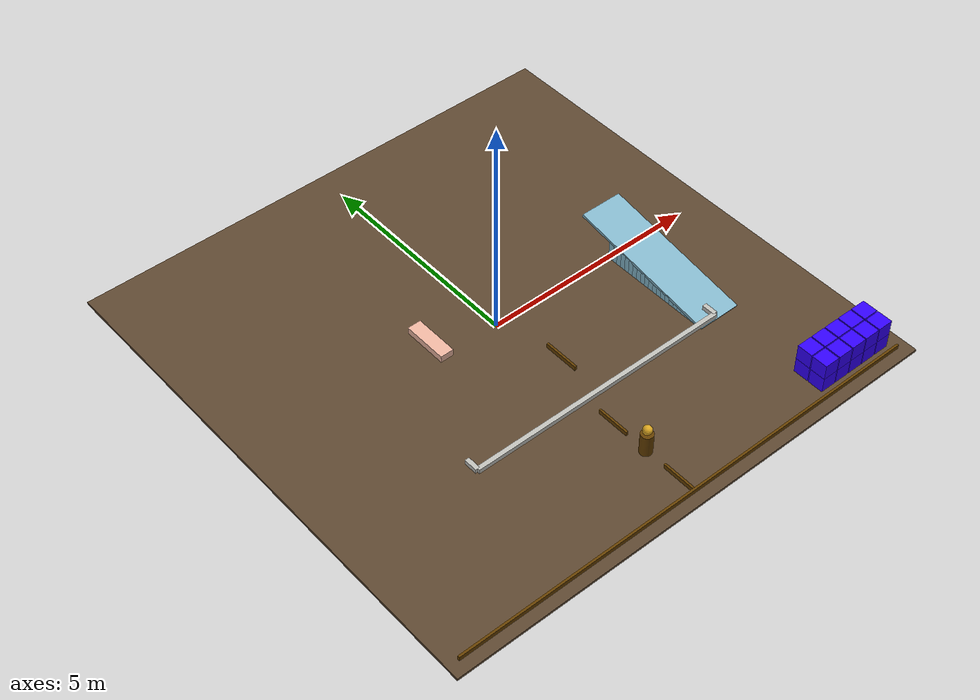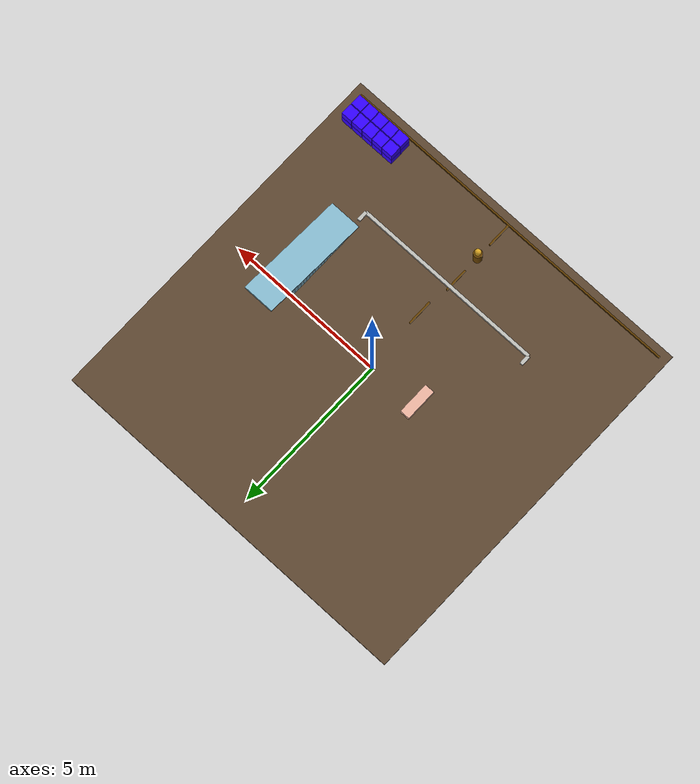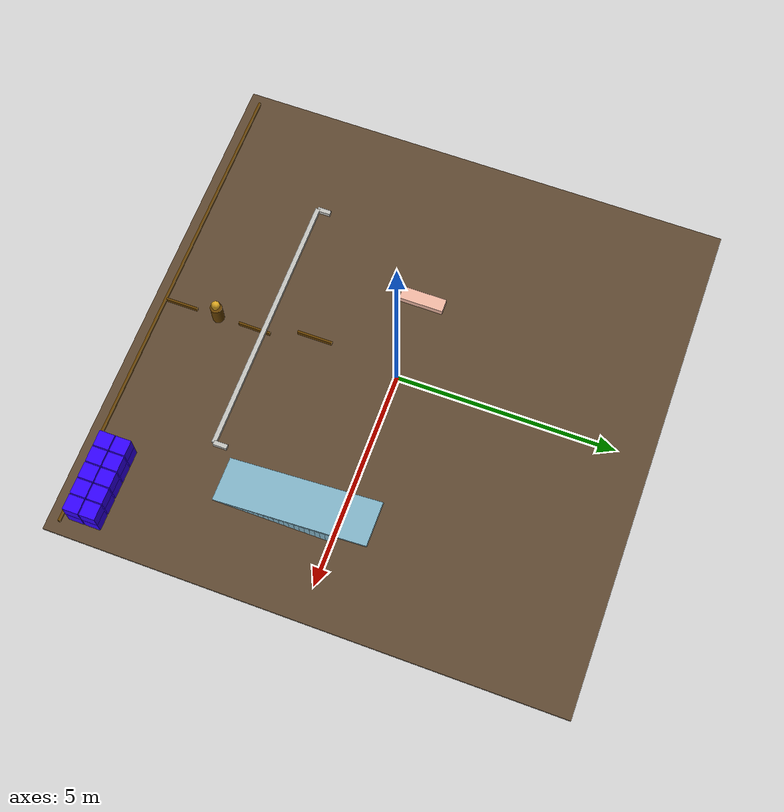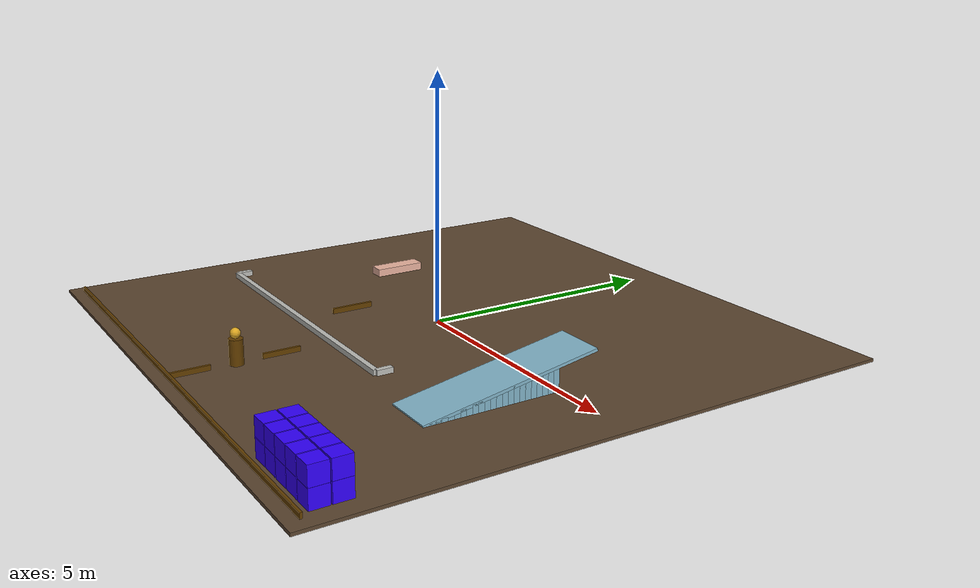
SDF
<sdf version="1.6">
 <world name="robocon2027_arena">
  <model name="field_base">
   <static>true</static>
   <pose>0.0000 0.0000 -0.0300 0.000000 0.000000 0.000000</pose>
   <link name="link">
    <collision name="col"><geometry><box><size>11.6 11.6 0.06</size></box></geometry></collision>
    <visual name="vis">
     <geometry><box><size>11.6 11.6 0.06</size></box></geometry>
     <material>
      <ambient>0.361 0.275 0.188 1.00</ambient>
      <diffuse>0.361 0.275 0.188 1.00</diffuse>
      <specular>0.04 0.04 0.04 1</specular>
      <emissive>0 0 0 1</emissive>
     </material>
    </visual>
   </link>
  </model>
  <model name="mustika_pillar">
   <static>true</static>
   <pose>0.0000 -4.2500 0.2500 0 0 0</pose>
   <link name="link">
    <collision name="col">
     <geometry><cylinder><radius>0.135</radius><length>0.5</length></cylinder></geometry>
    </collision>
    <visual name="vis">
     <geometry><cylinder><radius>0.135</radius><length>0.5</length></cylinder></geometry>
     <material>
      <ambient>0.392 0.243 0.000 1.00</ambient>
      <diffuse>0.392 0.243 0.000 1.00</diffuse>
      <specular>0.04 0.04 0.04 1</specular>
      <emissive>0 0 0 1</emissive>
     </material>
    </visual>
   </link>
  </model>
  <model name="mustika_ball">
   <static>true</static>
   <pose>0.0000 -4.2500 0.6000 0 0 0</pose>
   <link name="link">
    <inertial>
     <mass>0.27</mass>
     <inertia><ixx>0.00108</ixx><iyy>0.00108</iyy><izz>0.00108</izz></inertia>
    </inertial>
    <collision name="col"><geometry><sphere><radius>0.1</radius></sphere></geometry></collision>
    <visual name="vis">
     <geometry><sphere><radius>0.1</radius></sphere></geometry>
     <material>
      <ambient>0.855 0.647 0.125 1.00</ambient>
      <diffuse>0.855 0.647 0.125 1.00</diffuse>
      <specular>0.04 0.04 0.04 1</specular>
      <emissive>0 0 0 1</emissive>
     </material>
    </visual>
   </link>
  </model>
  <model name="fence_pS">
   <static>true</static>
   <pose>0.0000 -5.5250 0.0500 0.000000 0.000000 0.000000</pose>
   <link name="link">
    <collision name="col"><geometry><box><size>11.1 0.05 0.1</size></box></geometry></collision>
    <visual name="vis">
     <geometry><box><size>11.1 0.05 0.1</size></box></geometry>
     <material>
      <ambient>0.392 0.243 0.000 1.00</ambient>
      <diffuse>0.392 0.243 0.000 1.00</diffuse>
      <specular>0.04 0.04 0.04 1</specular>
      <emissive>0 0 0 1</emissive>
     </material>
    </visual>
   </link>
  </model>
  <model name="gdiv_2">
   <static>true</static>
   <pose>0.0000 -3.3750 0.0500 0.000000 0.000000 0.000000</pose>
   <link name="link">
    <collision name="col"><geometry><box><size>0.05 0.75 0.1</size></box></geometry></collision>
    <visual name="vis">
     <geometry><box><size>0.05 0.75 0.1</size></box></geometry>
     <material>
      <ambient>0.392 0.243 0.000 1.00</ambient>
      <diffuse>0.392 0.243 0.000 1.00</diffuse>
      <specular>0.04 0.04 0.04 1</specular>
      <emissive>0 0 0 1</emissive>
     </material>
    </visual>
   </link>
  </model>
  <model name="gdiv_3">
   <static>true</static>
   <pose>0.0000 -5.1250 0.0500 0.000000 0.000000 0.000000</pose>
   <link name="link">
    <collision name="col"><geometry><box><size>0.05 0.75 0.1</size></box></geometry></collision>
    <visual name="vis">
     <geometry><box><size>0.05 0.75 0.1</size></box></geometry>
     <material>
      <ambient>0.392 0.243 0.000 1.00</ambient>
      <diffuse>0.392 0.243 0.000 1.00</diffuse>
      <specular>0.04 0.04 0.04 1</specular>
      <emissive>0 0 0 1</emissive>
     </material>
    </visual>
   </link>
  </model>
  <model name="ddiv_1">
   <static>true</static>
   <pose>0.0000 -1.9000 0.6500 0.000000 0.000000 0.000000</pose>
   <link name="link">
    <collision name="col"><geometry><box><size>0.05 0.8 0.1</size></box></geometry></collision>
    <visual name="vis">
     <geometry><box><size>0.05 0.8 0.1</size></box></geometry>
     <material>
      <ambient>0.392 0.243 0.000 1.00</ambient>
      <diffuse>0.392 0.243 0.000 1.00</diffuse>
      <specular>0.04 0.04 0.04 1</specular>
      <emissive>0 0 0 1</emissive>
     </material>
    </visual>
   </link>
  </model>
  <model name="st2_red">
   <static>true</static>
   <pose>-1.6500 0.0000 0.6750 0.000000 0.000000 0.000000</pose>
   <link name="link">
    <collision name="col"><geometry><box><size>0.3 1.0 0.15</size></box></geometry></collision>
    <visual name="vis">
     <geometry><box><size>0.3 1.0 0.15</size></box></geometry>
     <material>
      <ambient>0.922 0.706 0.627 1.00</ambient>
      <diffuse>0.922 0.706 0.627 1.00</diffuse>
      <specular>0.04 0.04 0.04 1</specular>
      <emissive>0 0 0 1</emissive>
     </material>
    </visual>
   </link>
  </model>
  <model name="ramp_blue">
   <static>true</static>
   <pose>3.5000 -0.9500 0.3000 0.000000 -0.169778 1.570796</pose>
   <link name="link">
    <collision name="col"><geometry><box><size>3.5500000000000003 1.0 0.06</size></box></geometry></collision>
    <visual name="vis">
     <geometry><box><size>3.5500000000000003 1.0 0.06</size></box></geometry>
     <material>
      <ambient>0.510 0.706 0.784 1.00</ambient>
      <diffuse>0.510 0.706 0.784 1.00</diffuse>
      <specular>0.04 0.04 0.04 1</specular>
      <emissive>0 0 0 1</emissive>
     </material>
    </visual>
   </link>
  </model>
  <model name="rampsup_blue_1">
   <static>true</static>
   <pose>3.5000 -2.5250 0.0150 0.000000 0.000000 0.000000</pose>
   <link name="link">
    <collision name="col"><geometry><box><size>1.0 0.11866666666666698 0.03</size></box></geometry></collision>
    <visual name="vis">
     <geometry><box><size>1.0 0.11866666666666698 0.03</size></box></geometry>
     <material>
      <ambient>0.510 0.706 0.784 1.00</ambient>
      <diffuse>0.510 0.706 0.784 1.00</diffuse>
      <specular>0.04 0.04 0.04 1</specular>
      <emissive>0 0 0 1</emissive>
     </material>
    </visual>
   </link>
  </model>
  <model name="rampsup_blue_2">
   <static>true</static>
   <pose>3.5000 -2.4083 0.0250 0.000000 0.000000 0.000000</pose>
   <link name="link">
    <collision name="col">
     <geometry><box><size>1.0 0.11866666666666652 0.05000000000000005</size></box></geometry>
    </collision>
    <visual name="vis">
     <geometry><box><size>1.0 0.11866666666666652 0.05000000000000005</size></box></geometry>
     <material>
      <ambient>0.510 0.706 0.784 1.00</ambient>
      <diffuse>0.510 0.706 0.784 1.00</diffuse>
      <specular>0.04 0.04 0.04 1</specular>
      <emissive>0 0 0 1</emissive>
     </material>
    </visual>
   </link>
  </model>
  <model name="rampsup_blue_3">
   <static>true</static>
   <pose>3.5000 -2.2917 0.0350 0.000000 0.000000 0.000000</pose>
   <link name="link">
    <collision name="col">
     <geometry><box><size>1.0 0.11866666666666652 0.06999999999999995</size></box></geometry>
    </collision>
    <visual name="vis">
     <geometry><box><size>1.0 0.11866666666666652 0.06999999999999995</size></box></geometry>
     <material>
      <ambient>0.510 0.706 0.784 1.00</ambient>
      <diffuse>0.510 0.706 0.784 1.00</diffuse>
      <specular>0.04 0.04 0.04 1</specular>
      <emissive>0 0 0 1</emissive>
     </material>
    </visual>
   </link>
  </model>
  <model name="rampsup_blue_4">
   <static>true</static>
   <pose>3.5000 -2.1750 0.0450 0.000000 0.000000 0.000000</pose>
   <link name="link">
    <collision name="col"><geometry><box><size>1.0 0.11866666666666698 0.09</size></box></geometry></collision>
    <visual name="vis">
     <geometry><box><size>1.0 0.11866666666666698 0.09</size></box></geometry>
     <material>
      <ambient>0.510 0.706 0.784 1.00</ambient>
      <diffuse>0.510 0.706 0.784 1.00</diffuse>
      <specular>0.04 0.04 0.04 1</specular>
      <emissive>0 0 0 1</emissive>
     </material>
    </visual>
   </link>
  </model>
  <model name="rampsup_blue_5">
   <static>true</static>
   <pose>3.5000 -2.0583 0.0550 0.000000 0.000000 0.000000</pose>
   <link name="link">
    <collision name="col">
     <geometry><box><size>1.0 0.11866666666666652 0.11000000000000006</size></box></geometry>
    </collision>
    <visual name="vis">
     <geometry><box><size>1.0 0.11866666666666652 0.11000000000000006</size></box></geometry>
     <material>
      <ambient>0.510 0.706 0.784 1.00</ambient>
      <diffuse>0.510 0.706 0.784 1.00</diffuse>
      <specular>0.04 0.04 0.04 1</specular>
      <emissive>0 0 0 1</emissive>
     </material>
    </visual>
   </link>
  </model>
  <model name="rampsup_blue_6">
   <static>true</static>
   <pose>3.5000 -1.9417 0.0650 0.000000 0.000000 0.000000</pose>
   <link name="link">
    <collision name="col">
     <geometry><box><size>1.0 0.11866666666666652 0.12999999999999998</size></box></geometry>
    </collision>
    <visual name="vis">
     <geometry><box><size>1.0 0.11866666666666652 0.12999999999999998</size></box></geometry>
     <material>
      <ambient>0.510 0.706 0.784 1.00</ambient>
      <diffuse>0.510 0.706 0.784 1.00</diffuse>
      <specular>0.04 0.04 0.04 1</specular>
      <emissive>0 0 0 1</emissive>
     </material>
    </visual>
   </link>
  </model>
  <model name="rampsup_blue_7">
   <static>true</static>
   <pose>3.5000 -1.8250 0.0750 0.000000 0.000000 0.000000</pose>
   <link name="link">
    <collision name="col"><geometry><box><size>1.0 0.11866666666666698 0.15</size></box></geometry></collision>
    <visual name="vis">
     <geometry><box><size>1.0 0.11866666666666698 0.15</size></box></geometry>
     <material>
      <ambient>0.510 0.706 0.784 1.00</ambient>
      <diffuse>0.510 0.706 0.784 1.00</diffuse>
      <specular>0.04 0.04 0.04 1</specular>
      <emissive>0 0 0 1</emissive>
     </material>
    </visual>
   </link>
  </model>
  <model name="rampsup_blue_8">
   <static>true</static>
   <pose>3.5000 -1.7083 0.0850 0.000000 0.000000 0.000000</pose>
   <link name="link">
    <collision name="col"><geometry><box><size>1.0 0.11866666666666652 0.17</size></box></geometry></collision>
    <visual name="vis">
     <geometry><box><size>1.0 0.11866666666666652 0.17</size></box></geometry>
     <material>
      <ambient>0.510 0.706 0.784 1.00</ambient>
      <diffuse>0.510 0.706 0.784 1.00</diffuse>
      <specular>0.04 0.04 0.04 1</specular>
      <emissive>0 0 0 1</emissive>
     </material>
    </visual>
   </link>
  </model>
  <model name="rampsup_blue_9">
   <static>true</static>
   <pose>3.5000 -1.5917 0.0950 0.000000 0.000000 0.000000</pose>
   <link name="link">
    <collision name="col">
     <geometry><box><size>1.0 0.11866666666666674 0.19000000000000003</size></box></geometry>
    </collision>
    <visual name="vis">
     <geometry><box><size>1.0 0.11866666666666674 0.19000000000000003</size></box></geometry>
     <material>
      <ambient>0.510 0.706 0.784 1.00</ambient>
      <diffuse>0.510 0.706 0.784 1.00</diffuse>
      <specular>0.04 0.04 0.04 1</specular>
      <emissive>0 0 0 1</emissive>
     </material>
    </visual>
   </link>
  </model>
  <model name="rampsup_blue_10">
   <static>true</static>
   <pose>3.5000 -1.4750 0.1050 0.000000 0.000000 0.000000</pose>
   <link name="link">
    <collision name="col"><geometry><box><size>1.0 0.11866666666666652 0.21</size></box></geometry></collision>
    <visual name="vis">
     <geometry><box><size>1.0 0.11866666666666652 0.21</size></box></geometry>
     <material>
      <ambient>0.510 0.706 0.784 1.00</ambient>
      <diffuse>0.510 0.706 0.784 1.00</diffuse>
      <specular>0.04 0.04 0.04 1</specular>
      <emissive>0 0 0 1</emissive>
     </material>
    </visual>
   </link>
  </model>
  <model name="rampsup_blue_11">
   <static>true</static>
   <pose>3.5000 -1.3583 0.1150 0.000000 0.000000 0.000000</pose>
   <link name="link">
    <collision name="col">
     <geometry><box><size>1.0 0.11866666666666674 0.22999999999999998</size></box></geometry>
    </collision>
    <visual name="vis">
     <geometry><box><size>1.0 0.11866666666666674 0.22999999999999998</size></box></geometry>
     <material>
      <ambient>0.510 0.706 0.784 1.00</ambient>
      <diffuse>0.510 0.706 0.784 1.00</diffuse>
      <specular>0.04 0.04 0.04 1</specular>
      <emissive>0 0 0 1</emissive>
     </material>
    </visual>
   </link>
  </model>
  <model name="rampsup_blue_12">
   <static>true</static>
   <pose>3.5000 -1.2417 0.1250 0.000000 0.000000 0.000000</pose>
   <link name="link">
    <collision name="col">
     <geometry><box><size>1.0 0.11866666666666674 0.25000000000000006</size></box></geometry>
    </collision>
    <visual name="vis">
     <geometry><box><size>1.0 0.11866666666666674 0.25000000000000006</size></box></geometry>
     <material>
      <ambient>0.510 0.706 0.784 1.00</ambient>
      <diffuse>0.510 0.706 0.784 1.00</diffuse>
      <specular>0.04 0.04 0.04 1</specular>
      <emissive>0 0 0 1</emissive>
     </material>
    </visual>
   </link>
  </model>
  <model name="rampsup_blue_13">
   <static>true</static>
   <pose>3.5000 -1.1250 0.1350 0.000000 0.000000 0.000000</pose>
   <link name="link">
    <collision name="col"><geometry><box><size>1.0 0.11866666666666652 0.27</size></box></geometry></collision>
    <visual name="vis">
     <geometry><box><size>1.0 0.11866666666666652 0.27</size></box></geometry>
     <material>
      <ambient>0.510 0.706 0.784 1.00</ambient>
      <diffuse>0.510 0.706 0.784 1.00</diffuse>
      <specular>0.04 0.04 0.04 1</specular>
      <emissive>0 0 0 1</emissive>
     </material>
    </visual>
   </link>
  </model>
  <model name="rampsup_blue_14">
   <static>true</static>
   <pose>3.5000 -1.0083 0.1450 0.000000 0.000000 0.000000</pose>
   <link name="link">
    <collision name="col">
     <geometry><box><size>1.0 0.11866666666666674 0.2899999999999999</size></box></geometry>
    </collision>
    <visual name="vis">
     <geometry><box><size>1.0 0.11866666666666674 0.2899999999999999</size></box></geometry>
     <material>
      <ambient>0.510 0.706 0.784 1.00</ambient>
      <diffuse>0.510 0.706 0.784 1.00</diffuse>
      <specular>0.04 0.04 0.04 1</specular>
      <emissive>0 0 0 1</emissive>
     </material>
    </visual>
   </link>
  </model>
  <model name="rampsup_blue_15">
   <static>true</static>
   <pose>3.5000 -0.8917 0.1550 0.000000 0.000000 0.000000</pose>
   <link name="link">
    <collision name="col"><geometry><box><size>1.0 0.11866666666666674 0.31</size></box></geometry></collision>
    <visual name="vis">
     <geometry><box><size>1.0 0.11866666666666674 0.31</size></box></geometry>
     <material>
      <ambient>0.510 0.706 0.784 1.00</ambient>
      <diffuse>0.510 0.706 0.784 1.00</diffuse>
      <specular>0.04 0.04 0.04 1</specular>
      <emissive>0 0 0 1</emissive>
     </material>
    </visual>
   </link>
  </model>
  <model name="rampsup_blue_16">
   <static>true</static>
   <pose>3.5000 -0.7750 0.1650 0.000000 0.000000 0.000000</pose>
   <link name="link">
    <collision name="col"><geometry><box><size>1.0 0.11866666666666652 0.33</size></box></geometry></collision>
    <visual name="vis">
     <geometry><box><size>1.0 0.11866666666666652 0.33</size></box></geometry>
     <material>
      <ambient>0.510 0.706 0.784 1.00</ambient>
      <diffuse>0.510 0.706 0.784 1.00</diffuse>
      <specular>0.04 0.04 0.04 1</specular>
      <emissive>0 0 0 1</emissive>
     </material>
    </visual>
   </link>
  </model>
  <model name="rampsup_blue_17">
   <static>true</static>
   <pose>3.5000 -0.6583 0.1750 0.000000 0.000000 0.000000</pose>
   <link name="link">
    <collision name="col">
     <geometry><box><size>1.0 0.11866666666666674 0.35000000000000003</size></box></geometry>
    </collision>
    <visual name="vis">
     <geometry><box><size>1.0 0.11866666666666674 0.35000000000000003</size></box></geometry>
     <material>
      <ambient>0.510 0.706 0.784 1.00</ambient>
      <diffuse>0.510 0.706 0.784 1.00</diffuse>
      <specular>0.04 0.04 0.04 1</specular>
      <emissive>0 0 0 1</emissive>
     </material>
    </visual>
   </link>
  </model>
  <model name="rampsup_blue_18">
   <static>true</static>
   <pose>3.5000 -0.5417 0.1850 0.000000 0.000000 0.000000</pose>
   <link name="link">
    <collision name="col">
     <geometry><box><size>1.0 0.11866666666666652 0.36999999999999994</size></box></geometry>
    </collision>
    <visual name="vis">
     <geometry><box><size>1.0 0.11866666666666652 0.36999999999999994</size></box></geometry>
     <material>
      <ambient>0.510 0.706 0.784 1.00</ambient>
      <diffuse>0.510 0.706 0.784 1.00</diffuse>
      <specular>0.04 0.04 0.04 1</specular>
      <emissive>0 0 0 1</emissive>
     </material>
    </visual>
   </link>
  </model>
  <model name="rampsup_blue_19">
   <static>true</static>
   <pose>3.5000 -0.4250 0.1950 0.000000 0.000000 0.000000</pose>
   <link name="link">
    <collision name="col"><geometry><box><size>1.0 0.11866666666666698 0.39</size></box></geometry></collision>
    <visual name="vis">
     <geometry><box><size>1.0 0.11866666666666698 0.39</size></box></geometry>
     <material>
      <ambient>0.510 0.706 0.784 1.00</ambient>
      <diffuse>0.510 0.706 0.784 1.00</diffuse>
      <specular>0.04 0.04 0.04 1</specular>
      <emissive>0 0 0 1</emissive>
     </material>
    </visual>
   </link>
  </model>
  <model name="rampsup_blue_20">
   <static>true</static>
   <pose>3.5000 -0.3083 0.2050 0.000000 0.000000 0.000000</pose>
   <link name="link">
    <collision name="col">
     <geometry><box><size>1.0 0.11866666666666652 0.4100000000000001</size></box></geometry>
    </collision>
    <visual name="vis">
     <geometry><box><size>1.0 0.11866666666666652 0.4100000000000001</size></box></geometry>
     <material>
      <ambient>0.510 0.706 0.784 1.00</ambient>
      <diffuse>0.510 0.706 0.784 1.00</diffuse>
      <specular>0.04 0.04 0.04 1</specular>
      <emissive>0 0 0 1</emissive>
     </material>
    </visual>
   </link>
  </model>
  <model name="rampsup_blue_21">
   <static>true</static>
   <pose>3.5000 -0.1917 0.2150 0.000000 0.000000 0.000000</pose>
   <link name="link">
    <collision name="col">
     <geometry><box><size>1.0 0.11866666666666652 0.42999999999999994</size></box></geometry>
    </collision>
    <visual name="vis">
     <geometry><box><size>1.0 0.11866666666666652 0.42999999999999994</size></box></geometry>
     <material>
      <ambient>0.510 0.706 0.784 1.00</ambient>
      <diffuse>0.510 0.706 0.784 1.00</diffuse>
      <specular>0.04 0.04 0.04 1</specular>
      <emissive>0 0 0 1</emissive>
     </material>
    </visual>
   </link>
  </model>
  <model name="rampsup_blue_22">
   <static>true</static>
   <pose>3.5000 -0.0750 0.2250 0.000000 0.000000 0.000000</pose>
   <link name="link">
    <collision name="col"><geometry><box><size>1.0 0.11866666666666698 0.45</size></box></geometry></collision>
    <visual name="vis">
     <geometry><box><size>1.0 0.11866666666666698 0.45</size></box></geometry>
     <material>
      <ambient>0.510 0.706 0.784 1.00</ambient>
      <diffuse>0.510 0.706 0.784 1.00</diffuse>
      <specular>0.04 0.04 0.04 1</specular>
      <emissive>0 0 0 1</emissive>
     </material>
    </visual>
   </link>
  </model>
  <model name="rail_ns-">
   <static>true</static>
   <pose>0.0000 -3.0000 0.6500 0.000000 0.000000 0.000000</pose>
   <link name="link">
    <collision name="col"><geometry><box><size>6.0 0.1 0.1</size></box></geometry></collision>
    <visual name="vis">
     <geometry><box><size>6.0 0.1 0.1</size></box></geometry>
     <material>
      <ambient>0.745 0.745 0.725 1.00</ambient>
      <diffuse>0.745 0.745 0.725 1.00</diffuse>
      <specular>0.04 0.04 0.04 1</specular>
      <emissive>0 0 0 1</emissive>
     </material>
    </visual>
   </link>
  </model>
  <model name="rail_we_-_0">
   <static>true</static>
   <pose>-3.0000 -2.8500 0.6500 0.000000 0.000000 0.000000</pose>
   <link name="link">
    <collision name="col"><geometry><box><size>0.1 0.3 0.1</size></box></geometry></collision>
    <visual name="vis">
     <geometry><box><size>0.1 0.3 0.1</size></box></geometry>
     <material>
      <ambient>0.745 0.745 0.725 1.00</ambient>
      <diffuse>0.745 0.745 0.725 1.00</diffuse>
      <specular>0.04 0.04 0.04 1</specular>
      <emissive>0 0 0 1</emissive>
     </material>
    </visual>
   </link>
  </model>
  <model name="rail_we_+_0">
   <static>true</static>
   <pose>3.0000 -2.8500 0.6500 0.000000 0.000000 0.000000</pose>
   <link name="link">
    <collision name="col"><geometry><box><size>0.1 0.3 0.1</size></box></geometry></collision>
    <visual name="vis">
     <geometry><box><size>0.1 0.3 0.1</size></box></geometry>
     <material>
      <ambient>0.745 0.745 0.725 1.00</ambient>
      <diffuse>0.745 0.745 0.725 1.00</diffuse>
      <specular>0.04 0.04 0.04 1</specular>
      <emissive>0 0 0 1</emissive>
     </material>
    </visual>
   </link>
  </model>
  <model name="earth_20">
   <static>false</static>
   <pose>3.7500 -5.1875 0.1750 0 0 0</pose>
   <link name="link">
    <inertial><mass>0.6</mass><inertia><ixx>0.01225</ixx><iyy>0.01225</iyy><izz>0.01225</izz></inertia></inertial>
    <collision name="col">
     <geometry><box><size>0.35000000000000003 0.35000000000000003 0.35000000000000003</size></box></geometry>
    </collision>
    <visual name="vis">
     <geometry><box><size>0.35000000000000003 0.35000000000000003 0.35000000000000003</size></box></geometry>
     <material>
      <ambient>0.196 0.000 1.000 1.00</ambient>
      <diffuse>0.196 0.000 1.000 1.00</diffuse>
      <specular>0.04 0.04 0.04 1</specular>
      <emissive>0 0 0 1</emissive>
     </material>
    </visual>
   </link>
  </model>
  <model name="earth_21">
   <static>false</static>
   <pose>3.7500 -5.1875 0.5280 0 0 0</pose>
   <link name="link">
    <inertial><mass>0.6</mass><inertia><ixx>0.01225</ixx><iyy>0.01225</iyy><izz>0.01225</izz></inertia></inertial>
    <collision name="col">
     <geometry><box><size>0.35000000000000003 0.35000000000000003 0.35000000000000003</size></box></geometry>
    </collision>
    <visual name="vis">
     <geometry><box><size>0.35000000000000003 0.35000000000000003 0.35000000000000003</size></box></geometry>
     <material>
      <ambient>0.196 0.000 1.000 1.00</ambient>
      <diffuse>0.196 0.000 1.000 1.00</diffuse>
      <specular>0.04 0.04 0.04 1</specular>
      <emissive>0 0 0 1</emissive>
     </material>
    </visual>
   </link>
  </model>
  <model name="earth_22">
   <static>false</static>
   <pose>3.7500 -4.8125 0.1750 0 0 0</pose>
   <link name="link">
    <inertial><mass>0.6</mass><inertia><ixx>0.01225</ixx><iyy>0.01225</iyy><izz>0.01225</izz></inertia></inertial>
    <collision name="col">
     <geometry><box><size>0.35000000000000003 0.35000000000000003 0.35000000000000003</size></box></geometry>
    </collision>
    <visual name="vis">
     <geometry><box><size>0.35000000000000003 0.35000000000000003 0.35000000000000003</size></box></geometry>
     <material>
      <ambient>0.196 0.000 1.000 1.00</ambient>
      <diffuse>0.196 0.000 1.000 1.00</diffuse>
      <specular>0.04 0.04 0.04 1</specular>
      <emissive>0 0 0 1</emissive>
     </material>
    </visual>
   </link>
  </model>
  <model name="earth_23">
   <static>false</static>
   <pose>3.7500 -4.8125 0.5280 0 0 0</pose>
   <link name="link">
    <inertial><mass>0.6</mass><inertia><ixx>0.01225</ixx><iyy>0.01225</iyy><izz>0.01225</izz></inertia></inertial>
    <collision name="col">
     <geometry><box><size>0.35000000000000003 0.35000000000000003 0.35000000000000003</size></box></geometry>
    </collision>
    <visual name="vis">
     <geometry><box><size>0.35000000000000003 0.35000000000000003 0.35000000000000003</size></box></geometry>
     <material>
      <ambient>0.196 0.000 1.000 1.00</ambient>
      <diffuse>0.196 0.000 1.000 1.00</diffuse>
      <specular>0.04 0.04 0.04 1</specular>
      <emissive>0 0 0 1</emissive>
     </material>
    </visual>
   </link>
  </model>
  <model name="earth_24">
   <static>false</static>
   <pose>4.1250 -5.1875 0.1750 0 0 0</pose>
   <link name="link">
    <inertial><mass>0.6</mass><inertia><ixx>0.01225</ixx><iyy>0.01225</iyy><izz>0.01225</izz></inertia></inertial>
    <collision name="col">
     <geometry><box><size>0.35000000000000003 0.35000000000000003 0.35000000000000003</size></box></geometry>
    </collision>
    <visual name="vis">
     <geometry><box><size>0.35000000000000003 0.35000000000000003 0.35000000000000003</size></box></geometry>
     <material>
      <ambient>0.196 0.000 1.000 1.00</ambient>
      <diffuse>0.196 0.000 1.000 1.00</diffuse>
      <specular>0.04 0.04 0.04 1</specular>
      <emissive>0 0 0 1</emissive>
     </material>
    </visual>
   </link>
  </model>
  <model name="earth_25">
   <static>false</static>
   <pose>4.1250 -5.1875 0.5280 0 0 0</pose>
   <link name="link">
    <inertial><mass>0.6</mass><inertia><ixx>0.01225</ixx><iyy>0.01225</iyy><izz>0.01225</izz></inertia></inertial>
    <collision name="col">
     <geometry><box><size>0.35000000000000003 0.35000000000000003 0.35000000000000003</size></box></geometry>
    </collision>
    <visual name="vis">
     <geometry><box><size>0.35000000000000003 0.35000000000000003 0.35000000000000003</size></box></geometry>
     <material>
      <ambient>0.196 0.000 1.000 1.00</ambient>
      <diffuse>0.196 0.000 1.000 1.00</diffuse>
      <specular>0.04 0.04 0.04 1</specular>
      <emissive>0 0 0 1</emissive>
     </material>
    </visual>
   </link>
  </model>
  <model name="earth_26">
   <static>false</static>
   <pose>4.1250 -4.8125 0.1750 0 0 0</pose>
   <link name="link">
    <inertial><mass>0.6</mass><inertia><ixx>0.01225</ixx><iyy>0.01225</iyy><izz>0.01225</izz></inertia></inertial>
    <collision name="col">
     <geometry><box><size>0.35000000000000003 0.35000000000000003 0.35000000000000003</size></box></geometry>
    </collision>
    <visual name="vis">
     <geometry><box><size>0.35000000000000003 0.35000000000000003 0.35000000000000003</size></box></geometry>
     <material>
      <ambient>0.196 0.000 1.000 1.00</ambient>
      <diffuse>0.196 0.000 1.000 1.00</diffuse>
      <specular>0.04 0.04 0.04 1</specular>
      <emissive>0 0 0 1</emissive>
     </material>
    </visual>
   </link>
  </model>
  <model name="earth_27">
   <static>false</static>
   <pose>4.1250 -4.8125 0.5280 0 0 0</pose>
   <link name="link">
    <inertial><mass>0.6</mass><inertia><ixx>0.01225</ixx><iyy>0.01225</iyy><izz>0.01225</izz></inertia></inertial>
    <collision name="col">
     <geometry><box><size>0.35000000000000003 0.35000000000000003 0.35000000000000003</size></box></geometry>
    </collision>
    <visual name="vis">
     <geometry><box><size>0.35000000000000003 0.35000000000000003 0.35000000000000003</size></box></geometry>
     <material>
      <ambient>0.196 0.000 1.000 1.00</ambient>
      <diffuse>0.196 0.000 1.000 1.00</diffuse>
      <specular>0.04 0.04 0.04 1</specular>
      <emissive>0 0 0 1</emissive>
     </material>
    </visual>
   </link>
  </model>
  <model name="earth_28">
   <static>false</static>
   <pose>4.5000 -5.1875 0.1750 0 0 0</pose>
   <link name="link">
    <inertial><mass>0.6</mass><inertia><ixx>0.01225</ixx><iyy>0.01225</iyy><izz>0.01225</izz></inertia></inertial>
    <collision name="col">
     <geometry><box><size>0.35000000000000003 0.35000000000000003 0.35000000000000003</size></box></geometry>
    </collision>
    <visual name="vis">
     <geometry><box><size>0.35000000000000003 0.35000000000000003 0.35000000000000003</size></box></geometry>
     <material>
      <ambient>0.196 0.000 1.000 1.00</ambient>
      <diffuse>0.196 0.000 1.000 1.00</diffuse>
      <specular>0.04 0.04 0.04 1</specular>
      <emissive>0 0 0 1</emissive>
     </material>
    </visual>
   </link>
  </model>
  <model name="earth_29">
   <static>false</static>
   <pose>4.5000 -5.1875 0.5280 0 0 0</pose>
   <link name="link">
    <inertial><mass>0.6</mass><inertia><ixx>0.01225</ixx><iyy>0.01225</iyy><izz>0.01225</izz></inertia></inertial>
    <collision name="col">
     <geometry><box><size>0.35000000000000003 0.35000000000000003 0.35000000000000003</size></box></geometry>
    </collision>
    <visual name="vis">
     <geometry><box><size>0.35000000000000003 0.35000000000000003 0.35000000000000003</size></box></geometry>
     <material>
      <ambient>0.196 0.000 1.000 1.00</ambient>
      <diffuse>0.196 0.000 1.000 1.00</diffuse>
      <specular>0.04 0.04 0.04 1</specular>
      <emissive>0 0 0 1</emissive>
     </material>
    </visual>
   </link>
  </model>
  <model name="earth_30">
   <static>false</static>
   <pose>4.5000 -4.8125 0.1750 0 0 0</pose>
   <link name="link">
    <inertial><mass>0.6</mass><inertia><ixx>0.01225</ixx><iyy>0.01225</iyy><izz>0.01225</izz></inertia></inertial>
    <collision name="col">
     <geometry><box><size>0.35000000000000003 0.35000000000000003 0.35000000000000003</size></box></geometry>
    </collision>
    <visual name="vis">
     <geometry><box><size>0.35000000000000003 0.35000000000000003 0.35000000000000003</size></box></geometry>
     <material>
      <ambient>0.196 0.000 1.000 1.00</ambient>
      <diffuse>0.196 0.000 1.000 1.00</diffuse>
      <specular>0.04 0.04 0.04 1</specular>
      <emissive>0 0 0 1</emissive>
     </material>
    </visual>
   </link>
  </model>
  <model name="earth_31">
   <static>false</static>
   <pose>4.5000 -4.8125 0.5280 0 0 0</pose>
   <link name="link">
    <inertial><mass>0.6</mass><inertia><ixx>0.01225</ixx><iyy>0.01225</iyy><izz>0.01225</izz></inertia></inertial>
    <collision name="col">
     <geometry><box><size>0.35000000000000003 0.35000000000000003 0.35000000000000003</size></box></geometry>
    </collision>
    <visual name="vis">
     <geometry><box><size>0.35000000000000003 0.35000000000000003 0.35000000000000003</size></box></geometry>
     <material>
      <ambient>0.196 0.000 1.000 1.00</ambient>
      <diffuse>0.196 0.000 1.000 1.00</diffuse>
      <specular>0.04 0.04 0.04 1</specular>
      <emissive>0 0 0 1</emissive>
     </material>
    </visual>
   </link>
  </model>
  <model name="earth_32">
   <static>false</static>
   <pose>4.8750 -5.1875 0.1750 0 0 0</pose>
   <link name="link">
    <inertial><mass>0.6</mass><inertia><ixx>0.01225</ixx><iyy>0.01225</iyy><izz>0.01225</izz></inertia></inertial>
    <collision name="col">
     <geometry><box><size>0.35000000000000003 0.35000000000000003 0.35000000000000003</size></box></geometry>
    </collision>
    <visual name="vis">
     <geometry><box><size>0.35000000000000003 0.35000000000000003 0.35000000000000003</size></box></geometry>
     <material>
      <ambient>0.196 0.000 1.000 1.00</ambient>
      <diffuse>0.196 0.000 1.000 1.00</diffuse>
      <specular>0.04 0.04 0.04 1</specular>
      <emissive>0 0 0 1</emissive>
     </material>
    </visual>
   </link>
  </model>
  <model name="earth_33">
   <static>false</static>
   <pose>4.8750 -5.1875 0.5280 0 0 0</pose>
   <link name="link">
    <inertial><mass>0.6</mass><inertia><ixx>0.01225</ixx><iyy>0.01225</iyy><izz>0.01225</izz></inertia></inertial>
    <collision name="col">
     <geometry><box><size>0.35000000000000003 0.35000000000000003 0.35000000000000003</size></box></geometry>
    </collision>
    <visual name="vis">
     <geometry><box><size>0.35000000000000003 0.35000000000000003 0.35000000000000003</size></box></geometry>
     <material>
      <ambient>0.196 0.000 1.000 1.00</ambient>
      <diffuse>0.196 0.000 1.000 1.00</diffuse>
      <specular>0.04 0.04 0.04 1</specular>
      <emissive>0 0 0 1</emissive>
     </material>
    </visual>
   </link>
  </model>
  <model name="earth_34">
   <static>false</static>
   <pose>4.8750 -4.8125 0.1750 0 0 0</pose>
   <link name="link">
    <inertial><mass>0.6</mass><inertia><ixx>0.01225</ixx><iyy>0.01225</iyy><izz>0.01225</izz></inertia></inertial>
    <collision name="col">
     <geometry><box><size>0.35000000000000003 0.35000000000000003 0.35000000000000003</size></box></geometry>
    </collision>
    <visual name="vis">
     <geometry><box><size>0.35000000000000003 0.35000000000000003 0.35000000000000003</size></box></geometry>
     <material>
      <ambient>0.196 0.000 1.000 1.00</ambient>
      <diffuse>0.196 0.000 1.000 1.00</diffuse>
      <specular>0.04 0.04 0.04 1</specular>
      <emissive>0 0 0 1</emissive>
     </material>
    </visual>
   </link>
  </model>
  <model name="earth_35">
   <static>false</static>
   <pose>4.8750 -4.8125 0.5280 0 0 0</pose>
   <link name="link">
    <inertial><mass>0.6</mass><inertia><ixx>0.01225</ixx><iyy>0.01225</iyy><izz>0.01225</izz></inertia></inertial>
    <collision name="col">
     <geometry><box><size>0.35000000000000003 0.35000000000000003 0.35000000000000003</size></box></geometry>
    </collision>
    <visual name="vis">
     <geometry><box><size>0.35000000000000003 0.35000000000000003 0.35000000000000003</size></box></geometry>
     <material>
      <ambient>0.196 0.000 1.000 1.00</ambient>
      <diffuse>0.196 0.000 1.000 1.00</diffuse>
      <specular>0.04 0.04 0.04 1</specular>
      <emissive>0 0 0 1</emissive>
     </material>
    </visual>
   </link>
  </model>
  <model name="earth_36">
   <static>false</static>
   <pose>5.2500 -5.1875 0.1750 0 0 0</pose>
   <link name="link">
    <inertial><mass>0.6</mass><inertia><ixx>0.01225</ixx><iyy>0.01225</iyy><izz>0.01225</izz></inertia></inertial>
    <collision name="col">
     <geometry><box><size>0.35000000000000003 0.35000000000000003 0.35000000000000003</size></box></geometry>
    </collision>
    <visual name="vis">
     <geometry><box><size>0.35000000000000003 0.35000000000000003 0.35000000000000003</size></box></geometry>
     <material>
      <ambient>0.196 0.000 1.000 1.00</ambient>
      <diffuse>0.196 0.000 1.000 1.00</diffuse>
      <specular>0.04 0.04 0.04 1</specular>
      <emissive>0 0 0 1</emissive>
     </material>
    </visual>
   </link>
  </model>
  <model name="earth_37">
   <static>false</static>
   <pose>5.2500 -5.1875 0.5280 0 0 0</pose>
   <link name="link">
    <inertial><mass>0.6</mass><inertia><ixx>0.01225</ixx><iyy>0.01225</iyy><izz>0.01225</izz></inertia></inertial>
    <collision name="col">
     <geometry><box><size>0.35000000000000003 0.35000000000000003 0.35000000000000003</size></box></geometry>
    </collision>
    <visual name="vis">
     <geometry><box><size>0.35000000000000003 0.35000000000000003 0.35000000000000003</size></box></geometry>
     <material>
      <ambient>0.196 0.000 1.000 1.00</ambient>
      <diffuse>0.196 0.000 1.000 1.00</diffuse>
      <specular>0.04 0.04 0.04 1</specular>
      <emissive>0 0 0 1</emissive>
     </material>
    </visual>
   </link>
  </model>
  <model name="earth_38">
   <static>false</static>
   <pose>5.2500 -4.8125 0.1750 0 0 0</pose>
   <link name="link">
    <inertial><mass>0.6</mass><inertia><ixx>0.01225</ixx><iyy>0.01225</iyy><izz>0.01225</izz></inertia></inertial>
    <collision name="col">
     <geometry><box><size>0.35000000000000003 0.35000000000000003 0.35000000000000003</size></box></geometry>
    </collision>
    <visual name="vis">
     <geometry><box><size>0.35000000000000003 0.35000000000000003 0.35000000000000003</size></box></geometry>
     <material>
      <ambient>0.196 0.000 1.000 1.00</ambient>
      <diffuse>0.196 0.000 1.000 1.00</diffuse>
      <specular>0.04 0.04 0.04 1</specular>
      <emissive>0 0 0 1</emissive>
     </material>
    </visual>
   </link>
  </model>
  <model name="earth_39">
   <static>false</static>
   <pose>5.2500 -4.8125 0.5280 0 0 0</pose>
   <link name="link">
    <inertial><mass>0.6</mass><inertia><ixx>0.01225</ixx><iyy>0.01225</iyy><izz>0.01225</izz></inertia></inertial>
    <collision name="col">
     <geometry><box><size>0.35000000000000003 0.35000000000000003 0.35000000000000003</size></box></geometry>
    </collision>
    <visual name="vis">
     <geometry><box><size>0.35000000000000003 0.35000000000000003 0.35000000000000003</size></box></geometry>
     <material>
      <ambient>0.196 0.000 1.000 1.00</ambient>
      <diffuse>0.196 0.000 1.000 1.00</diffuse>
      <specular>0.04 0.04 0.04 1</specular>
      <emissive>0 0 0 1</emissive>
     </material>
    </visual>
   </link>
  </model>
 </world>
</sdf>
